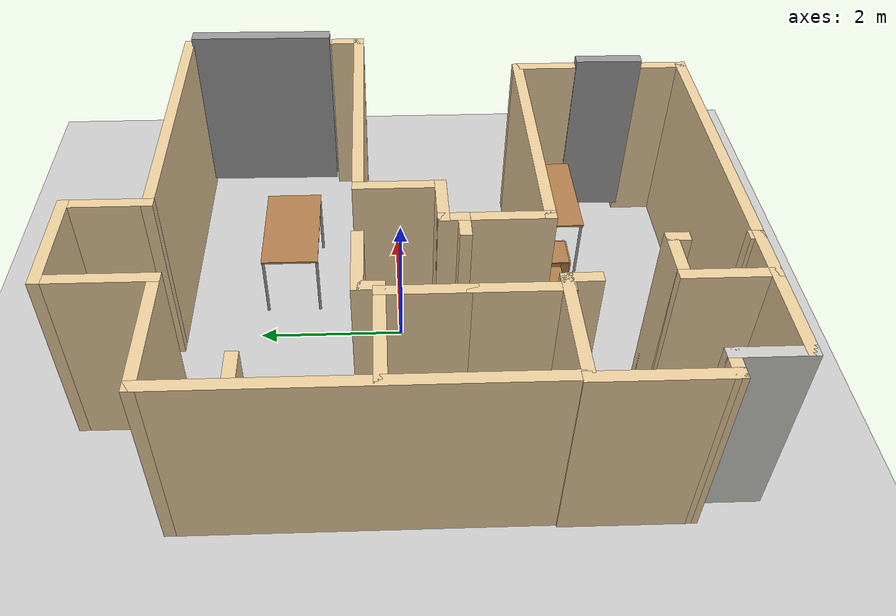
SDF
<sdf version="1.6">
 <world name="default">
  <plugin name="welcome_message" filename="libwelcome_message.so"/>
  <light name="sun" type="directional">
   <pose>0 0 10 0 -0 0</pose>
   <diffuse>0.8 0.8 0.8 1</diffuse>
   <specular>0.2 0.2 0.2 1</specular>
   <attenuation>
    <range>1000</range>
    <constant>0.9</constant>
    <linear>0.01</linear>
    <quadratic>0.001</quadratic>
   </attenuation>
   <direction>-0.5 0.1 -0.9</direction>
  </light>
  <model name="ground_plane">
   <static>1</static>
   <link name="link">
    <collision name="collision">
     <geometry><plane><normal>0 0 1</normal><size>100 100</size></plane></geometry>
     <surface>
      <contact><collide_bitmask>65535</collide_bitmask></contact>
      <friction><ode><mu>100</mu><mu2>50</mu2></ode></friction>
     </surface>
    </collision>
    <visual name="visual">
     <cast_shadows>0</cast_shadows>
     <geometry><plane><normal>0 0 1</normal><size>100 100</size></plane></geometry>
     <material>
      <script><uri>file://media/materials/scripts/gazebo.material</uri><name>Gazebo/Grey</name></script>
     </material>
    </visual>
   </link>
  </model>
  <gravity>0 0 -9.8</gravity>
  <magnetic_field>6e-06 2.3e-05 -4.2e-05</magnetic_field>
  <atmosphere type="adiabatic"/>
  <physics name="default_physics" default="0" type="ode">
   <max_step_size>0.001</max_step_size>
   <real_time_factor>1</real_time_factor>
   <real_time_update_rate>1000</real_time_update_rate>
  </physics>
  <scene><ambient>0.4 0.4 0.4 1</ambient><background>0.7 0.7 0.7 1</background><shadows>1</shadows></scene>
  <audio><device>default</device></audio>
  <spherical_coordinates>
   <surface_model>EARTH_WGS84</surface_model>
   <latitude_deg>0</latitude_deg>
   <longitude_deg>0</longitude_deg>
   <elevation>0</elevation>
   <heading_deg>0</heading_deg>
  </spherical_coordinates>
  <model name="domitory_wall">
   <pose>0.243811 -0.034166 0 0 -0 0</pose>
   <link name="Wall_100">
    <collision name="Wall_100_Collision">
     <geometry><box><size>1.5 0.15 2.67</size></box></geometry>
     <pose>0 0 1.335 0 -0 0</pose>
    </collision>
    <visual name="Wall_100_Visual">
     <pose>0 0 1.335 0 -0 0</pose>
     <geometry><box><size>1.5 0.15 2.67</size></box></geometry>
     <material>
      <script><uri>file://media/materials/scripts/gazebo.material</uri><name>Gazebo/Grey</name></script>
      <ambient>0.921569 0.807843 0.615686 1</ambient>
     </material>
     <meta><layer>0</layer></meta>
    </visual>
    <pose>-2.67494 0.319 0 0 -0 3.14159</pose>
   </link>
   <link name="Wall_104">
    <collision name="Wall_104_Collision">
     <geometry><box><size>0.5 0.15 2.67</size></box></geometry>
     <pose>0 0 1.335 0 -0 0</pose>
    </collision>
    <visual name="Wall_104_Visual">
     <pose>0 0 1.335 0 -0 0</pose>
     <geometry><box><size>0.5 0.15 2.67</size></box></geometry>
     <material>
      <script><uri>file://media/materials/scripts/gazebo.material</uri><name>Gazebo/Grey</name></script>
      <ambient>0.921569 0.807843 0.615686 1</ambient>
     </material>
     <meta><layer>0</layer></meta>
    </visual>
    <pose>-3.19294 1.871 0 0 -0 0</pose>
   </link>
   <link name="Wall_106">
    <collision name="Wall_106_Collision">
     <geometry><box><size>0.5 0.15 2.67</size></box></geometry>
     <pose>0 0 1.335 0 -0 0</pose>
    </collision>
    <visual name="Wall_106_Visual">
     <pose>0 0 1.335 0 -0 0</pose>
     <geometry><box><size>0.5 0.15 2.67</size></box></geometry>
     <material>
      <script><uri>file://media/materials/scripts/gazebo.material</uri><name>Gazebo/Grey</name></script>
      <ambient>0.921569 0.807843 0.615686 1</ambient>
     </material>
     <meta><layer>0</layer></meta>
    </visual>
    <pose>3.41406 0.744 0 0 -0 1.5708</pose>
   </link>
   <link name="Wall_18">
    <collision name="Wall_18_Collision">
     <geometry><box><size>1.25 0.15 2.67</size></box></geometry>
     <pose>0 0 1.335 0 -0 0</pose>
    </collision>
    <visual name="Wall_18_Visual">
     <pose>0 0 1.335 0 -0 0</pose>
     <geometry><box><size>1.25 0.15 2.67</size></box></geometry>
     <material>
      <script><uri>file://media/materials/scripts/gazebo.material</uri><name>Gazebo/Grey</name></script>
      <ambient>0.921569 0.807843 0.615686 1</ambient>
     </material>
     <meta><layer>0</layer></meta>
    </visual>
    <pose>-2.08414 -1.281 0 0 -0 -1.57116</pose>
   </link>
   <link name="Wall_20">
    <collision name="Wall_20_Collision">
     <geometry><box><size>0.41996 0.15 2.67</size></box></geometry>
     <pose>0 0 1.335 0 -0 0</pose>
    </collision>
    <visual name="Wall_20_Visual">
     <pose>0 0 1.335 0 -0 0</pose>
     <geometry><box><size>0.41996 0.15 2.67</size></box></geometry>
     <material>
      <script><uri>file://media/materials/scripts/gazebo.material</uri><name>Gazebo/Grey</name></script>
      <ambient>0.921569 0.807843 0.615686 1</ambient>
     </material>
     <meta><layer>0</layer></meta>
    </visual>
    <pose>-0.971011 -0.730784 0 0 -0 -0.001598</pose>
   </link>
   <link name="Wall_22">
    <collision name="Wall_22_Collision">
     <geometry><box><size>0.25 0.15 2.67</size></box></geometry>
     <pose>0 0 1.335 0 -0 0</pose>
    </collision>
    <visual name="Wall_22_Visual">
     <pose>0 0 1.335 0 -0 0</pose>
     <geometry><box><size>0.25 0.15 2.67</size></box></geometry>
     <material>
      <script><uri>file://media/materials/scripts/gazebo.material</uri><name>Gazebo/Grey</name></script>
      <ambient>0.921569 0.807843 0.615686 1</ambient>
     </material>
     <meta><layer>0</layer></meta>
    </visual>
    <pose>-2.03434 -1.831 0 0 -0 0</pose>
   </link>
   <link name="Wall_34">
    <collision name="Wall_34_Collision">
     <geometry><box><size>1.6 0.15 2.67</size></box></geometry>
     <pose>0 0 1.335 0 -0 0</pose>
    </collision>
    <visual name="Wall_34_Visual">
     <pose>0 0 1.335 0 -0 0</pose>
     <geometry><box><size>1.6 0.15 2.67</size></box></geometry>
     <material>
      <script><uri>file://media/materials/scripts/gazebo.material</uri><name>Gazebo/Grey</name></script>
      <ambient>0.921569 0.807843 0.615686 1</ambient>
     </material>
     <meta><layer>0</layer></meta>
    </visual>
    <pose>-2.66894 -1.81487 0 0 -0 3.14141</pose>
   </link>
   <link name="Wall_36">
    <collision name="Wall_36_Collision">
     <geometry><box><size>1.70427 0.15 2.67</size></box></geometry>
     <pose>0 0 1.335 0 -0 0</pose>
    </collision>
    <visual name="Wall_36_Visual">
     <pose>0 0 1.335 0 -0 0</pose>
     <geometry><box><size>1.70427 0.15 2.67</size></box></geometry>
     <material>
      <script><uri>file://media/materials/scripts/gazebo.material</uri><name>Gazebo/Grey</name></script>
      <ambient>0.921569 0.807843 0.615686 1</ambient>
     </material>
     <meta><layer>0</layer></meta>
    </visual>
    <pose>-3.41269 -2.59187 0 0 -0 -1.57241</pose>
   </link>
   <link name="Wall_38">
    <collision name="Wall_38_Collision">
     <geometry><box><size>0.43 0.15 2.67</size></box></geometry>
     <pose>0 0 1.335 0 -0 0</pose>
    </collision>
    <visual name="Wall_38_Visual">
     <pose>0 0 1.335 0 -0 0</pose>
     <geometry><box><size>0.43 0.15 2.67</size></box></geometry>
     <material>
      <script><uri>file://media/materials/scripts/gazebo.material</uri><name>Gazebo/Grey</name></script>
      <ambient>0.921569 0.807843 0.615686 1</ambient>
     </material>
     <meta><layer>0</layer></meta>
    </visual>
    <pose>-3.27394 -3.369 0 0 -0 0</pose>
   </link>
   <link name="Wall_40">
    <collision name="Wall_40_Collision">
     <geometry><box><size>1 0.15 2.67</size></box></geometry>
     <pose>0 0 1.335 0 -0 0</pose>
    </collision>
    <visual name="Wall_40_Visual">
     <pose>0 0 1.335 0 -0 0</pose>
     <geometry><box><size>1 0.15 2.67</size></box></geometry>
     <material>
      <script><uri>file://media/materials/scripts/gazebo.material</uri><name>Gazebo/CeilingTiled</name></script>
      <ambient>0.921569 0.807843 0.615686 1</ambient>
     </material>
     <meta><layer>0</layer></meta>
    </visual>
    <pose>-3.13394 -3.794 0 0 -0 -1.5708</pose>
   </link>
   <link name="Wall_42">
    <collision name="Wall_42_Collision">
     <geometry><box><size>0.5 0.15 2.67</size></box></geometry>
     <pose>0 0 1.335 0 -0 0</pose>
    </collision>
    <visual name="Wall_42_Visual">
     <pose>0 0 1.335 0 -0 0</pose>
     <geometry><box><size>0.5 0.15 2.67</size></box></geometry>
     <material>
      <script><uri>file://media/materials/scripts/gazebo.material</uri><name>Gazebo/Grey</name></script>
      <ambient>0.921569 0.807843 0.615686 1</ambient>
     </material>
     <meta><layer>0</layer></meta>
    </visual>
    <pose>-1.94394 -1.99 0 0 -0 -1.5708</pose>
   </link>
   <link name="Wall_44">
    <collision name="Wall_44_Collision">
     <geometry><box><size>1.35 0.15 2.67</size></box></geometry>
     <pose>0 0 1.335 0 -0 0</pose>
    </collision>
    <visual name="Wall_44_Visual">
     <pose>0 0 1.335 0 -0 0</pose>
     <geometry><box><size>1.35 0.15 2.67</size></box></geometry>
     <material>
      <script><uri>file://media/materials/scripts/gazebo.material</uri><name>Gazebo/Grey</name></script>
      <ambient>0.921569 0.807843 0.615686 1</ambient>
     </material>
     <meta><layer>0</layer></meta>
    </visual>
    <pose>-2.53394 -4.219 0 0 -0 0</pose>
   </link>
   <link name="Wall_48">
    <collision name="Wall_48_Collision">
     <geometry><box><size>1.2 0.15 2.67</size></box></geometry>
     <pose>0 0 1.335 0 -0 0</pose>
    </collision>
    <visual name="Wall_48_Visual">
     <pose>0 0 1.335 0 -0 0</pose>
     <geometry><box><size>1.2 0.15 2.67</size></box></geometry>
     <material>
      <script><uri>file://media/materials/scripts/gazebo.material</uri><name>Gazebo/Grey</name></script>
      <ambient>0.921569 0.807843 0.615686 1</ambient>
     </material>
     <meta><layer>0</layer></meta>
    </visual>
    <pose>-1.93394 -3.694 0 0 -0 1.5708</pose>
   </link>
   <link name="Wall_50">
    <collision name="Wall_50_Collision">
     <geometry><box><size>0.8 0.15 2.67</size></box></geometry>
     <pose>0 0 1.335 0 -0 0</pose>
    </collision>
    <visual name="Wall_50_Visual">
     <pose>0 0 1.335 0 -0 0</pose>
     <geometry><box><size>0.8 0.15 2.67</size></box></geometry>
     <material>
      <script><uri>file://media/materials/scripts/gazebo.material</uri><name>Gazebo/Grey</name></script>
      <ambient>0.921569 0.807843 0.615686 1</ambient>
     </material>
     <meta><layer>0</layer></meta>
    </visual>
    <pose>-1.60894 -4.219 0 0 -0 0</pose>
   </link>
   <link name="Wall_52">
    <collision name="Wall_52_Collision">
     <geometry><box><size>0.8 0.15 2.67</size></box></geometry>
     <pose>0 0 1.335 0 -0 0</pose>
    </collision>
    <visual name="Wall_52_Visual">
     <pose>0 0 1.335 0 -0 0</pose>
     <geometry><box><size>0.8 0.15 2.67</size></box></geometry>
     <material>
      <script><uri>file://media/materials/scripts/gazebo.material</uri><name>Gazebo/Grey</name></script>
      <ambient>0.921569 0.807843 0.615686 1</ambient>
     </material>
     <meta><layer>0</layer></meta>
    </visual>
    <pose>-1.60894 -3.169 0 0 -0 0</pose>
   </link>
   <link name="Wall_54">
    <collision name="Wall_54_Collision">
     <geometry><box><size>0.3 0.15 2.67</size></box></geometry>
     <pose>0 0 1.335 0 -0 0</pose>
    </collision>
    <visual name="Wall_54_Visual">
     <pose>0 0 1.335 0 -0 0</pose>
     <geometry><box><size>0.3 0.15 2.67</size></box></geometry>
     <material>
      <script><uri>file://media/materials/scripts/gazebo.material</uri><name>Gazebo/Grey</name></script>
      <ambient>0.921569 0.807843 0.615686 1</ambient>
     </material>
     <meta><layer>0</layer></meta>
    </visual>
    <pose>-1.28394 -3.244 0 0 -0 -1.5708</pose>
   </link>
   <link name="Wall_56">
    <collision name="Wall_56_Collision">
     <geometry><box><size>0.2 0.15 2.67</size></box></geometry>
     <pose>0 0 1.335 0 -0 0</pose>
    </collision>
    <visual name="Wall_56_Visual">
     <pose>0 0 1.335 0 -0 0</pose>
     <geometry><box><size>0.2 0.15 2.67</size></box></geometry>
     <material>
      <script><uri>file://media/materials/scripts/gazebo.material</uri><name>Gazebo/Grey</name></script>
      <ambient>0.921569 0.807843 0.615686 1</ambient>
     </material>
     <meta><layer>0</layer></meta>
    </visual>
    <pose>-1.28394 -4.194 0 0 -0 1.5708</pose>
   </link>
   <link name="Wall_58">
    <collision name="Wall_58_Collision">
     <geometry><box><size>4 0.15 2.67</size></box></geometry>
     <pose>0 0 1.335 0 -0 0</pose>
    </collision>
    <visual name="Wall_58_Visual">
     <pose>0 0 1.335 0 -0 0</pose>
     <geometry><box><size>4 0.15 2.67</size></box></geometry>
     <material>
      <script><uri>file://media/materials/scripts/gazebo.material</uri><name>Gazebo/Grey</name></script>
      <ambient>0.921569 0.807843 0.615686 1</ambient>
     </material>
     <meta><layer>0</layer></meta>
    </visual>
    <pose>0.641061 -4.219 0 0 -0 0</pose>
   </link>
   <link name="Wall_60">
    <collision name="Wall_60_Collision">
     <geometry><box><size>0.75 0.15 2.67</size></box></geometry>
     <pose>0 0 1.335 0 -0 0</pose>
    </collision>
    <visual name="Wall_60_Visual">
     <pose>0 0 1.335 0 -0 0</pose>
     <geometry><box><size>0.75 0.15 2.67</size></box></geometry>
     <material>
      <script><uri>file://media/materials/scripts/gazebo.material</uri><name>Gazebo/Grey</name></script>
      <ambient>0.921569 0.807843 0.615686 1</ambient>
     </material>
     <meta><layer>0</layer></meta>
    </visual>
    <pose>2.56606 -3.919 0 0 -0 1.5708</pose>
   </link>
   <link name="Wall_62">
    <collision name="Wall_62_Collision">
     <geometry><box><size>1 0.15 2.67</size></box></geometry>
     <pose>0 0 1.335 0 -0 0</pose>
    </collision>
    <visual name="Wall_62_Visual">
     <pose>0 0 1.335 0 -0 0</pose>
     <geometry><box><size>1 0.15 2.67</size></box></geometry>
     <material>
      <script><uri>file://media/materials/scripts/gazebo.material</uri><name>Gazebo/Grey</name></script>
      <ambient>0.921569 0.807843 0.615686 1</ambient>
     </material>
     <meta><layer>0</layer></meta>
    </visual>
    <pose>2.59406 -2.215 0 0 -0 1.5708</pose>
   </link>
   <link name="Wall_64">
    <collision name="Wall_64_Collision">
     <geometry><box><size>3.58 0.15 2.67</size></box></geometry>
     <pose>0 0 1.335 0 -0 0</pose>
    </collision>
    <visual name="Wall_64_Visual">
     <pose>0 0 1.335 0 -0 0</pose>
     <geometry><box><size>3.58 0.15 2.67</size></box></geometry>
     <material>
      <script><uri>file://media/materials/scripts/gazebo.material</uri><name>Gazebo/Grey</name></script>
      <ambient>0.921569 0.807843 0.615686 1</ambient>
     </material>
     <meta><layer>0</layer></meta>
    </visual>
    <pose>0.879061 -1.79 0 0 -0 3.14159</pose>
   </link>
   <link name="Wall_69">
    <collision name="Wall_69_Collision">
     <geometry><box><size>1.20986 0.15 2.67</size></box></geometry>
     <pose>0 0 1.335 0 -0 0</pose>
    </collision>
    <visual name="Wall_69_Visual">
     <pose>0 0 1.335 0 -0 0</pose>
     <geometry><box><size>1.20986 0.15 2.67</size></box></geometry>
     <material>
      <script><uri>file://media/materials/scripts/gazebo.material</uri><name>Gazebo/Grey</name></script>
      <ambient>0.921569 0.807843 0.615686 1</ambient>
     </material>
     <meta><layer>0</layer></meta>
    </visual>
    <pose>-0.83594 -1.2605 0 0 -0 -1.5708</pose>
   </link>
   <link name="Wall_71">
    <collision name="Wall_71_Collision">
     <geometry><box><size>1.2 0.15 2.67</size></box></geometry>
     <pose>0 0 1.335 0 -0 0</pose>
    </collision>
    <visual name="Wall_71_Visual">
     <pose>0 0 1.335 0 -0 0</pose>
     <geometry><box><size>1.2 0.15 2.67</size></box></geometry>
     <material>
      <script><uri>file://media/materials/scripts/gazebo.material</uri><name>Gazebo/Grey</name></script>
      <ambient>0.921569 0.807843 0.615686 1</ambient>
     </material>
     <meta><layer>0</layer></meta>
    </visual>
    <pose>-2.08394 -0.206 0 0 -0 1.5708</pose>
   </link>
   <link name="Wall_73">
    <collision name="Wall_73_Collision">
     <geometry><box><size>0.234 0.15 2.5</size></box></geometry>
     <pose>0 0 1.25 0 -0 0</pose>
    </collision>
    <visual name="Wall_73_Visual">
     <pose>0 0 1.25 0 -0 0</pose>
     <geometry><box><size>0.234 0.15 2.5</size></box></geometry>
     <material>
      <script><uri>file://media/materials/scripts/gazebo.material</uri><name>Gazebo/Grey</name></script>
      <ambient>1 1 1 1</ambient>
     </material>
     <meta><layer>0</layer></meta>
    </visual>
    <pose>-2.04194 0.319 0 0 -0 0</pose>
   </link>
   <link name="Wall_74">
    <collision name="Wall_74_Collision">
     <geometry><box><size>0.4 0.15 2.67</size></box></geometry>
     <pose>0 0 1.335 0 -0 0</pose>
    </collision>
    <visual name="Wall_74_Visual">
     <pose>0 0 1.335 0 -0 0</pose>
     <geometry><box><size>0.4 0.15 2.67</size></box></geometry>
     <material>
      <script><uri>file://media/materials/scripts/gazebo.material</uri><name>Gazebo/Grey</name></script>
      <ambient>0.921569 0.807843 0.615686 1</ambient>
     </material>
     <meta><layer>0</layer></meta>
    </visual>
    <pose>-1.99994 0.444 0 0 -0 1.5708</pose>
   </link>
   <link name="Wall_78">
    <collision name="Wall_78_Collision">
     <geometry><box><size>1.0156 0.15 2.67</size></box></geometry>
     <pose>0 0 1.335 0 -0 0</pose>
    </collision>
    <visual name="Wall_78_Visual">
     <pose>0 0 1.335 0 -0 0</pose>
     <geometry><box><size>1.0156 0.15 2.67</size></box></geometry>
     <material>
      <script><uri>file://media/materials/scripts/gazebo.material</uri><name>Gazebo/Grey</name></script>
      <ambient>0.921569 0.807843 0.615686 1</ambient>
     </material>
     <meta><layer>0</layer></meta>
    </visual>
    <pose>-1.56694 0.569 0 0 -0 0</pose>
   </link>
   <link name="Wall_80">
    <collision name="Wall_80_Collision">
     <geometry><box><size>0.4 0.15 2.67</size></box></geometry>
     <pose>0 0 1.335 0 -0 0</pose>
    </collision>
    <visual name="Wall_80_Visual">
     <pose>0 0 1.335 0 -0 0</pose>
     <geometry><box><size>0.4 0.15 2.67</size></box></geometry>
     <material>
      <script><uri>file://media/materials/scripts/gazebo.material</uri><name>Gazebo/Grey</name></script>
      <ambient>0.921569 0.807843 0.615686 1</ambient>
     </material>
     <meta><layer>0</layer></meta>
    </visual>
    <pose>-0.83594 -0.606 0 0 -0 1.5708</pose>
   </link>
   <link name="Wall_82">
    <collision name="Wall_82_Collision">
     <geometry><box><size>0.8 0.15 2.67</size></box></geometry>
     <pose>0 0 1.335 0 -0 0</pose>
    </collision>
    <visual name="Wall_82_Visual">
     <pose>0 0 1.335 0 -0 0</pose>
     <geometry><box><size>0.8 0.15 2.67</size></box></geometry>
     <material>
      <script><uri>file://media/materials/scripts/gazebo.material</uri><name>Gazebo/Grey</name></script>
      <ambient>0.921569 0.807843 0.615686 1</ambient>
     </material>
     <meta><layer>0</layer></meta>
    </visual>
    <pose>-0.510939 -0.481 0 0 -0 0</pose>
   </link>
   <link name="Wall_84">
    <collision name="Wall_84_Collision">
     <geometry><box><size>1.2 0.15 2.67</size></box></geometry>
     <pose>0 0 1.335 0 -0 0</pose>
    </collision>
    <visual name="Wall_84_Visual">
     <pose>0 0 1.335 0 -0 0</pose>
     <geometry><box><size>1.2 0.15 2.67</size></box></geometry>
     <material>
      <script><uri>file://media/materials/scripts/gazebo.material</uri><name>Gazebo/Grey</name></script>
      <ambient>0.921569 0.807843 0.615686 1</ambient>
     </material>
     <meta><layer>0</layer></meta>
    </visual>
    <pose>-0.185939 0.044 0 0 -0 1.5708</pose>
   </link>
   <link name="Wall_86">
    <collision name="Wall_86_Collision">
     <geometry><box><size>3.75 0.15 2.67</size></box></geometry>
     <pose>0 0 1.335 0 -0 0</pose>
    </collision>
    <visual name="Wall_86_Visual">
     <pose>0 0 1.335 0 -0 0</pose>
     <geometry><box><size>3.75 0.15 2.67</size></box></geometry>
     <material>
      <script><uri>file://media/materials/scripts/gazebo.material</uri><name>Gazebo/Grey</name></script>
      <ambient>0.921569 0.807843 0.615686 1</ambient>
     </material>
     <meta><layer>0</layer></meta>
    </visual>
    <pose>1.61406 0.569 0 0 -0 0</pose>
   </link>
   <link name="Wall_89">
    <collision name="Wall_89_Collision">
     <geometry><box><size>4 0.15 2.67</size></box></geometry>
     <pose>0 0 1.335 0 -0 0</pose>
    </collision>
    <visual name="Wall_89_Visual">
     <pose>0 0 1.335 0 -0 0</pose>
     <geometry><box><size>4 0.15 2.67</size></box></geometry>
     <material>
      <script><uri>file://media/materials/scripts/gazebo.material</uri><name>Gazebo/Grey</name></script>
      <ambient>0.921569 0.807843 0.615686 1</ambient>
     </material>
     <meta><layer>0</layer></meta>
    </visual>
    <pose>1.48906 3.169 0 0 -0 3.14159</pose>
   </link>
   <link name="Wall_90">
    <collision name="Wall_90_Collision">
     <geometry><box><size>1.2 0.15 2.67</size></box></geometry>
     <pose>0 0 1.335 0 -0 0</pose>
    </collision>
    <visual name="Wall_90_Visual">
     <pose>0 0 1.335 0 -0 0</pose>
     <geometry><box><size>1.2 0.15 2.67</size></box></geometry>
     <material>
      <script><uri>file://media/materials/scripts/gazebo.material</uri><name>Gazebo/Grey</name></script>
      <ambient>0.921569 0.807843 0.615686 1</ambient>
     </material>
     <meta><layer>0</layer></meta>
    </visual>
    <pose>-0.435939 3.694 0 0 -0 1.5708</pose>
   </link>
   <link name="Wall_92">
    <collision name="Wall_92_Collision">
     <geometry><box><size>1.5 0.15 2.67</size></box></geometry>
     <pose>0 0 1.335 0 -0 0</pose>
    </collision>
    <visual name="Wall_92_Visual">
     <pose>0 0 1.335 0 -0 0</pose>
     <geometry><box><size>1.5 0.15 2.67</size></box></geometry>
     <material>
      <script><uri>file://media/materials/scripts/gazebo.material</uri><name>Gazebo/Grey</name></script>
      <ambient>0.921569 0.807843 0.615686 1</ambient>
     </material>
     <meta><layer>0</layer></meta>
    </visual>
    <pose>-1.11094 4.219 0 0 -0 3.14159</pose>
   </link>
   <link name="Wall_93">
    <collision name="Wall_93_Collision">
     <geometry><box><size>1.5 0.15 2.67</size></box></geometry>
     <pose>0 0 1.335 0 -0 0</pose>
    </collision>
    <visual name="Wall_93_Visual">
     <pose>0 0 1.335 0 -0 0</pose>
     <geometry><box><size>1.5 0.15 2.67</size></box></geometry>
     <material>
      <script><uri>file://media/materials/scripts/gazebo.material</uri><name>Gazebo/Grey</name></script>
      <ambient>0.921569 0.807843 0.615686 1</ambient>
     </material>
     <meta><layer>0</layer></meta>
    </visual>
    <pose>-1.78594 3.544 0 0 -0 -1.5708</pose>
   </link>
   <link name="Wall_94">
    <collision name="Wall_94_Collision">
     <geometry><box><size>1.75 0.15 2.67</size></box></geometry>
     <pose>0 0 1.335 0 -0 0</pose>
    </collision>
    <visual name="Wall_94_Visual">
     <pose>0 0 1.335 0 -0 0</pose>
     <geometry><box><size>1.75 0.15 2.67</size></box></geometry>
     <material>
      <script><uri>file://media/materials/scripts/gazebo.material</uri><name>Gazebo/Grey</name></script>
      <ambient>0.921569 0.807843 0.615686 1</ambient>
     </material>
     <meta><layer>0</layer></meta>
    </visual>
    <pose>-2.58594 2.869 0 0 -0 3.14159</pose>
   </link>
   <link name="Wall_96">
    <collision name="Wall_96_Collision">
     <geometry><box><size>4.75 0.15 2.67</size></box></geometry>
     <pose>0 0 1.335 0 -0 0</pose>
    </collision>
    <visual name="Wall_96_Visual">
     <pose>0 0 1.335 0 -0 0</pose>
     <geometry><box><size>4.75 0.15 2.67</size></box></geometry>
     <material>
      <script><uri>file://media/materials/scripts/gazebo.material</uri><name>Gazebo/Grey</name></script>
      <ambient>0.921569 0.807843 0.615686 1</ambient>
     </material>
     <meta><layer>0</layer></meta>
    </visual>
    <pose>-3.38594 0.569 0 0 -0 -1.5708</pose>
   </link>
   <link name="Window_0">
    <collision name="Window_0_Collision">
     <geometry><box><size>0.96 0.17 2.67</size></box></geometry>
     <pose>0 0 0.95 0 -0 0</pose>
    </collision>
    <visual name="Window_0_Visual">
     <pose>0 0 0.95 0 -0 0</pose>
     <geometry><box><size>0.96 0.17 2.67</size></box></geometry>
     <material>
      <script><uri>file://media/materials/scripts/gazebo.material</uri><name>Gazebo/Grey</name></script>
     </material>
    </visual>
    <pose>2.57626 -3.12933 0.5 0 -0 1.55517</pose>
   </link>
   <link name="Window_1">
    <collision name="Window_1_Collision">
     <geometry><box><size>2.1 0.2 2.67</size></box></geometry>
     <pose>0 0 0.95 0 -0 0</pose>
    </collision>
    <visual name="Window_1_Visual">
     <pose>0 0 0.95 0 -0 0</pose>
     <geometry><box><size>2.1 0.2 2.67</size></box></geometry>
     <material>
      <script><uri>file://media/materials/scripts/gazebo.material</uri><name>Gazebo/Grey</name></script>
     </material>
    </visual>
    <pose>3.43737 2.06548 0.5 0 -0 1.55727</pose>
   </link>
   <static>1</static>
  </model>
  <model name="cabinet">
   <static>1</static>
   <link name="cabinet_bottom_plate">
    <inertial>
     <pose>0 0 -1 0 -0 0</pose>
     <inertia><ixx>2.05</ixx><ixy>0</ixy><ixz>0</ixz><iyy>2.05</iyy><iyz>0</iyz><izz>2.05</izz></inertia>
     <mass>25</mass>
    </inertial>
    <collision name="cabinet_bottom_plate_geom">
     <pose>0 0 0.01 0 -0 0</pose>
     <geometry><box><size>0.45 0.45 0.02</size></box></geometry>
    </collision>
    <visual name="cabinet_bottom_plate_geom_visual">
     <pose>0 0 0.01 0 -0 0</pose>
     <geometry><box><size>0.45 0.45 0.02</size></box></geometry>
     <material>
      <script><uri>file://media/materials/scripts/gazebo.material</uri><name>Gazebo/Wood</name></script>
     </material>
    </visual>
    <collision name="cabinet_bottom_plate_geom_cabinet_back_plate">
     <pose>0.235 0 0.51 0 -0 0</pose>
     <geometry><box><size>0.02 0.45 1.02</size></box></geometry>
    </collision>
    <visual name="cabinet_bottom_plate_geom_cabinet_back_plate_visual">
     <pose>0.235 0 0.51 0 -0 0</pose>
     <geometry><box><size>0.02 0.45 1.02</size></box></geometry>
     <material>
      <script><uri>file://media/materials/scripts/gazebo.material</uri><name>Gazebo/Wood</name></script>
     </material>
    </visual>
    <collision name="cabinet_bottom_plate_geom_cabinet_left_plate">
     <pose>0 0.235 0.51 0 -0 0</pose>
     <geometry><box><size>0.45 0.02 1.02</size></box></geometry>
    </collision>
    <visual name="cabinet_bottom_plate_geom_cabinet_left_plate_visual">
     <pose>0 0.235 0.51 0 -0 0</pose>
     <geometry><box><size>0.45 0.02 1.02</size></box></geometry>
     <material>
      <script><uri>file://media/materials/scripts/gazebo.material</uri><name>Gazebo/Wood</name></script>
     </material>
    </visual>
    <collision name="cabinet_bottom_plate_geom_cabinet_middle_plate">
     <pose>0 0 0.51 0 -0 0</pose>
     <geometry><box><size>0.45 0.45 0.02</size></box></geometry>
    </collision>
    <visual name="cabinet_bottom_plate_geom_cabinet_middle_plate_visual">
     <pose>0 0 0.51 0 -0 0</pose>
     <geometry><box><size>0.45 0.45 0.02</size></box></geometry>
     <material>
      <script><uri>file://media/materials/scripts/gazebo.material</uri><name>Gazebo/Wood</name></script>
     </material>
    </visual>
    <collision name="cabinet_bottom_plate_geom_cabinet_right_plate">
     <pose>0 -0.235 0.51 0 -0 0</pose>
     <geometry><box><size>0.45 0.02 1.02</size></box></geometry>
    </collision>
    <visual name="cabinet_bottom_plate_geom_cabinet_right_plate_visual">
     <pose>0 -0.235 0.51 0 -0 0</pose>
     <geometry><box><size>0.45 0.02 1.02</size></box></geometry>
     <material>
      <script><uri>file://media/materials/scripts/gazebo.material</uri><name>Gazebo/Wood</name></script>
     </material>
    </visual>
    <collision name="cabinet_bottom_plate_geom_cabinet_top_plate">
     <pose>0 0 1.01 0 -0 0</pose>
     <geometry><box><size>0.45 0.45 0.02</size></box></geometry>
    </collision>
    <visual name="cabinet_bottom_plate_geom_cabinet_top_plate_visual">
     <pose>0 0 1.01 0 -0 0</pose>
     <geometry><box><size>0.45 0.45 0.02</size></box></geometry>
     <material>
      <script><uri>file://media/materials/scripts/gazebo.material</uri><name>Gazebo/Wood</name></script>
     </material>
    </visual>
   </link>
   <pose>0.539238 -2.16083 0 0 -0 0</pose>
  </model>
  <model name="table">
   <static>1</static>
   <link name="link">
    <collision name="surface">
     <pose>0 0 1 0 -0 0</pose>
     <geometry><box><size>1.5 0.8 0.03</size></box></geometry>
     <surface><friction><ode><mu>0.6</mu><mu2>0.6</mu2></ode></friction></surface>
    </collision>
    <visual name="visual1">
     <pose>0 0 1 0 -0 0</pose>
     <geometry><box><size>1.5 0.8 0.03</size></box></geometry>
     <material>
      <script><uri>file://media/materials/scripts/gazebo.material</uri><name>Gazebo/Wood</name></script>
     </material>
    </visual>
    <collision name="front_left_leg">
     <pose>0.68 0.38 0.5 0 -0 0</pose>
     <geometry><cylinder><radius>0.02</radius><length>1</length></cylinder></geometry>
    </collision>
    <visual name="front_left_leg">
     <pose>0.68 0.38 0.5 0 -0 0</pose>
     <geometry><cylinder><radius>0.02</radius><length>1</length></cylinder></geometry>
     <material>
      <script><uri>file://media/materials/scripts/gazebo.material</uri><name>Gazebo/Grey</name></script>
     </material>
    </visual>
    <collision name="front_right_leg">
     <pose>0.68 -0.38 0.5 0 -0 0</pose>
     <geometry><cylinder><radius>0.02</radius><length>1</length></cylinder></geometry>
    </collision>
    <visual name="front_right_leg">
     <pose>0.68 -0.38 0.5 0 -0 0</pose>
     <geometry><cylinder><radius>0.02</radius><length>1</length></cylinder></geometry>
     <material>
      <script><uri>file://media/materials/scripts/gazebo.material</uri><name>Gazebo/Grey</name></script>
     </material>
    </visual>
    <collision name="back_right_leg">
     <pose>-0.68 -0.38 0.5 0 -0 0</pose>
     <geometry><cylinder><radius>0.02</radius><length>1</length></cylinder></geometry>
    </collision>
    <visual name="back_right_leg">
     <pose>-0.68 -0.38 0.5 0 -0 0</pose>
     <geometry><cylinder><radius>0.02</radius><length>1</length></cylinder></geometry>
     <material>
      <script><uri>file://media/materials/scripts/gazebo.material</uri><name>Gazebo/Grey</name></script>
     </material>
    </visual>
    <collision name="back_left_leg">
     <pose>-0.68 0.38 0.5 0 -0 0</pose>
     <geometry><cylinder><radius>0.02</radius><length>1</length></cylinder></geometry>
    </collision>
    <visual name="back_left_leg">
     <pose>-0.68 0.38 0.5 0 -0 0</pose>
     <geometry><cylinder><radius>0.02</radius><length>1</length></cylinder></geometry>
     <material>
      <script><uri>file://media/materials/scripts/gazebo.material</uri><name>Gazebo/Grey</name></script>
     </material>
    </visual>
   </link>
   <pose>1.86359 -2.3274 0 0 -0 0</pose>
  </model>
  <model name="table_clone">
   <static>1</static>
   <link name="link">
    <collision name="surface">
     <pose>0 0 1 0 -0 0</pose>
     <geometry><box><size>1.5 0.8 0.03</size></box></geometry>
     <surface><friction><ode><mu>0.6</mu><mu2>0.6</mu2></ode></friction></surface>
    </collision>
    <visual name="visual1">
     <pose>0 0 1 0 -0 0</pose>
     <geometry><box><size>1.5 0.8 0.03</size></box></geometry>
     <material>
      <script><uri>file://media/materials/scripts/gazebo.material</uri><name>Gazebo/Wood</name></script>
     </material>
    </visual>
    <collision name="front_left_leg">
     <pose>0.68 0.38 0.5 0 -0 0</pose>
     <geometry><cylinder><radius>0.02</radius><length>1</length></cylinder></geometry>
    </collision>
    <visual name="front_left_leg">
     <pose>0.68 0.38 0.5 0 -0 0</pose>
     <geometry><cylinder><radius>0.02</radius><length>1</length></cylinder></geometry>
     <material>
      <script><uri>file://media/materials/scripts/gazebo.material</uri><name>Gazebo/Grey</name></script>
     </material>
    </visual>
    <collision name="front_right_leg">
     <pose>0.68 -0.38 0.5 0 -0 0</pose>
     <geometry><cylinder><radius>0.02</radius><length>1</length></cylinder></geometry>
    </collision>
    <visual name="front_right_leg">
     <pose>0.68 -0.38 0.5 0 -0 0</pose>
     <geometry><cylinder><radius>0.02</radius><length>1</length></cylinder></geometry>
     <material>
      <script><uri>file://media/materials/scripts/gazebo.material</uri><name>Gazebo/Grey</name></script>
     </material>
    </visual>
    <collision name="back_right_leg">
     <pose>-0.68 -0.38 0.5 0 -0 0</pose>
     <geometry><cylinder><radius>0.02</radius><length>1</length></cylinder></geometry>
    </collision>
    <visual name="back_right_leg">
     <pose>-0.68 -0.38 0.5 0 -0 0</pose>
     <geometry><cylinder><radius>0.02</radius><length>1</length></cylinder></geometry>
     <material>
      <script><uri>file://media/materials/scripts/gazebo.material</uri><name>Gazebo/Grey</name></script>
     </material>
    </visual>
    <collision name="back_left_leg">
     <pose>-0.68 0.38 0.5 0 -0 0</pose>
     <geometry><cylinder><radius>0.02</radius><length>1</length></cylinder></geometry>
    </collision>
    <visual name="back_left_leg">
     <pose>-0.68 0.38 0.5 0 -0 0</pose>
     <geometry><cylinder><radius>0.02</radius><length>1</length></cylinder></geometry>
     <material>
      <script><uri>file://media/materials/scripts/gazebo.material</uri><name>Gazebo/Grey</name></script>
     </material>
    </visual>
   </link>
   <pose>1.20278 1.55731 0 0 -0 0</pose>
  </model>
 </world>
</sdf>
